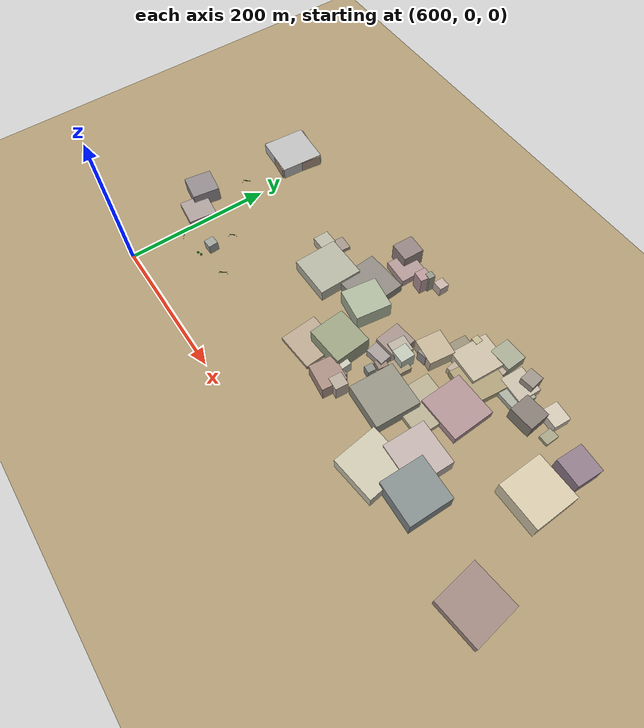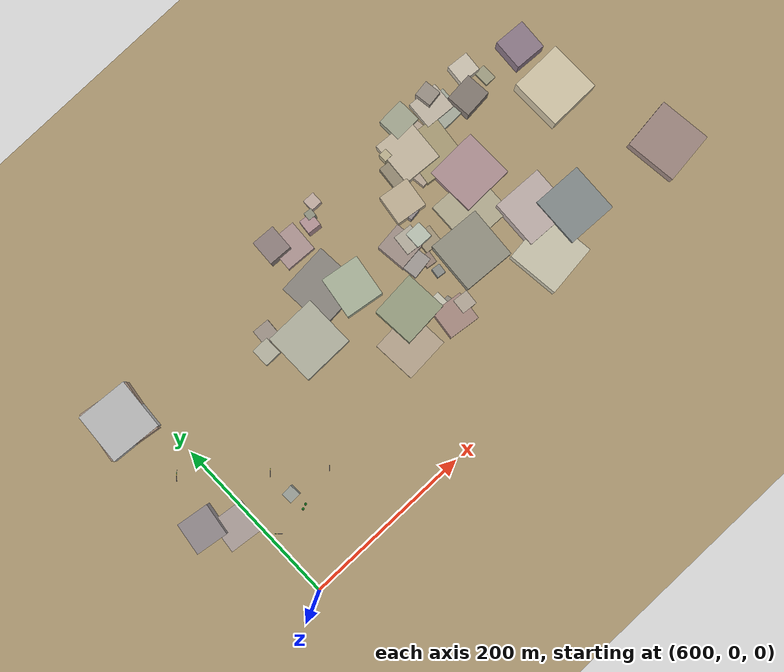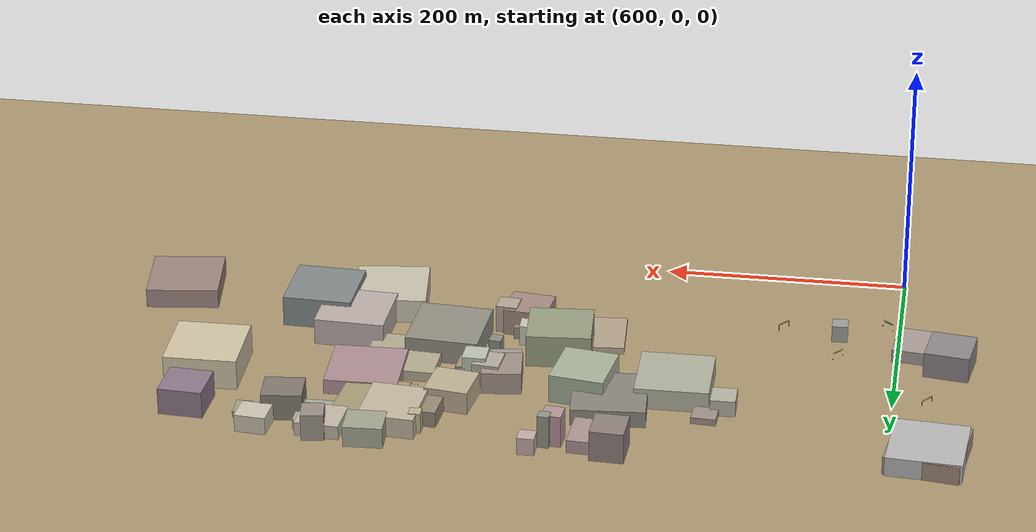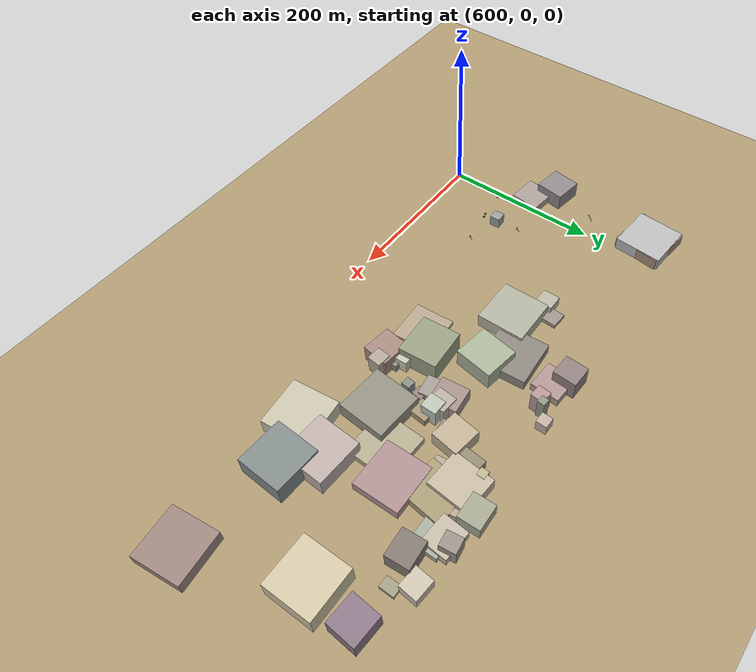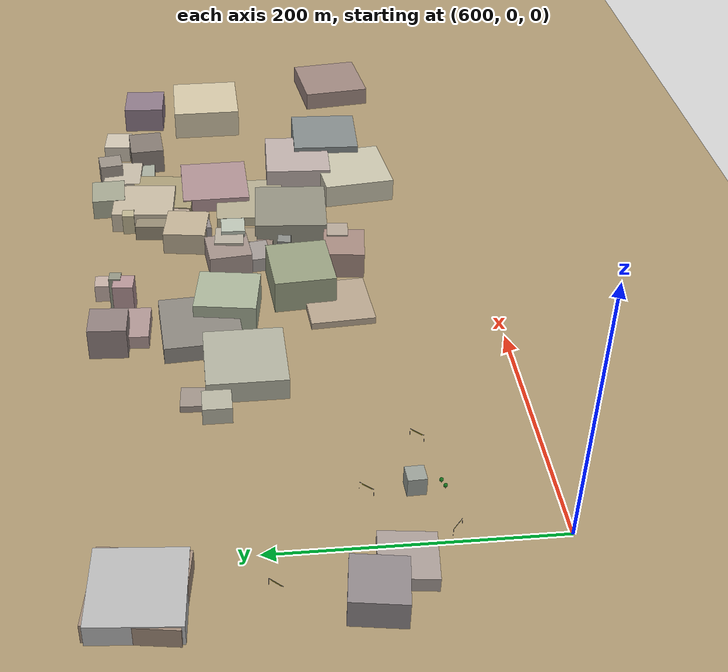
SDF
<sdf version="1.9">
 <world name="crossroad_world">
  <model name="ground_plane">
   <static>true</static>
   <pose>0 0 -0.05 0 0 0</pose>
   <link name="link">
    <collision name="collision">
     <geometry><plane><normal>0 0 1</normal><size>10000 10000</size></plane></geometry>
    </collision>
    <visual name="visual">
     <geometry><plane><normal>0 0 1</normal><size>15000 15000</size></plane></geometry>
     <material><ambient>0.68 0.60 0.45 1</ambient><diffuse>0.68 0.60 0.45 1</diffuse></material>
    </visual>
   </link>
  </model>
  <model name="gantry_13">
   <static>true</static>
   <pose>695.353 85.050 0 0 0 0.853</pose>
   <link name="link">
    <visual name="post_l">
     <pose>-5.700 0 2.925 0 0 0</pose>
     <geometry><cylinder><radius>0.1</radius><length>5.85</length></cylinder></geometry>
     <material><ambient>0.30 0.30 0.35 1</ambient><diffuse>0.30 0.30 0.35 1</diffuse></material>
    </visual>
    <visual name="post_r">
     <pose>5.700 0 2.925 0 0 0</pose>
     <geometry><cylinder><radius>0.1</radius><length>5.85</length></cylinder></geometry>
     <material><ambient>0.30 0.30 0.35 1</ambient><diffuse>0.30 0.30 0.35 1</diffuse></material>
    </visual>
    <visual name="beam">
     <pose>0 0 6.000 0 0 0</pose>
     <geometry><box><size>11.400 0.22 0.22</size></box></geometry>
     <material><ambient>0.30 0.30 0.35 1</ambient><diffuse>0.30 0.30 0.35 1</diffuse></material>
    </visual>
    <visual name="sign_border">
     <pose>0 -0.14 5.450 0 0 0</pose>
     <geometry><box><size>8.288 0.04 0.92</size></box></geometry>
     <material><ambient>0.90 0.85 0.10 1</ambient><diffuse>0.90 0.85 0.10 1</diffuse></material>
    </visual>
    <visual name="sign_panel">
     <pose>0 -0.15 5.450 0 0 0</pose>
     <geometry><box><size>8.208 0.05 0.86</size></box></geometry>
     <material><ambient>0.05 0.38 0.10 1</ambient><diffuse>0.05 0.38 0.10 1</diffuse></material>
    </visual>
    <collision name="col_post_l">
     <pose>-5.700 0 2.925 0 0 0</pose>
     <geometry><cylinder><radius>0.1</radius><length>5.85</length></cylinder></geometry>
    </collision>
    <collision name="col_post_r">
     <pose>5.700 0 2.925 0 0 0</pose>
     <geometry><cylinder><radius>0.1</radius><length>5.85</length></cylinder></geometry>
    </collision>
    <collision name="col_beam">
     <pose>0 0 6.000 0 0 0</pose>
     <geometry><box><size>11.400 0.22 0.22</size></box></geometry>
    </collision>
   </link>
  </model>
  <model name="gantry_42">
   <static>true</static>
   <pose>610.063 72.761 0 0 0 2.427</pose>
   <link name="link">
    <visual name="post_l">
     <pose>-5.700 0 2.925 0 0 0</pose>
     <geometry><cylinder><radius>0.1</radius><length>5.85</length></cylinder></geometry>
     <material><ambient>0.30 0.30 0.35 1</ambient><diffuse>0.30 0.30 0.35 1</diffuse></material>
    </visual>
    <visual name="post_r">
     <pose>5.700 0 2.925 0 0 0</pose>
     <geometry><cylinder><radius>0.1</radius><length>5.85</length></cylinder></geometry>
     <material><ambient>0.30 0.30 0.35 1</ambient><diffuse>0.30 0.30 0.35 1</diffuse></material>
    </visual>
    <visual name="beam">
     <pose>0 0 6.000 0 0 0</pose>
     <geometry><box><size>11.400 0.22 0.22</size></box></geometry>
     <material><ambient>0.30 0.30 0.35 1</ambient><diffuse>0.30 0.30 0.35 1</diffuse></material>
    </visual>
    <visual name="sign_border">
     <pose>0 -0.14 5.450 0 0 0</pose>
     <geometry><box><size>8.288 0.04 0.92</size></box></geometry>
     <material><ambient>0.90 0.85 0.10 1</ambient><diffuse>0.90 0.85 0.10 1</diffuse></material>
    </visual>
    <visual name="sign_panel">
     <pose>0 -0.15 5.450 0 0 0</pose>
     <geometry><box><size>8.208 0.05 0.86</size></box></geometry>
     <material><ambient>0.05 0.38 0.10 1</ambient><diffuse>0.05 0.38 0.10 1</diffuse></material>
    </visual>
    <collision name="col_post_l">
     <pose>-5.700 0 2.925 0 0 0</pose>
     <geometry><cylinder><radius>0.1</radius><length>5.85</length></cylinder></geometry>
    </collision>
    <collision name="col_post_r">
     <pose>5.700 0 2.925 0 0 0</pose>
     <geometry><cylinder><radius>0.1</radius><length>5.85</length></cylinder></geometry>
    </collision>
    <collision name="col_beam">
     <pose>0 0 6.000 0 0 0</pose>
     <geometry><box><size>11.400 0.22 0.22</size></box></geometry>
    </collision>
   </link>
  </model>
  <model name="gantry_139">
   <static>true</static>
   <pose>572.665 191.808 0 0 0 0.855</pose>
   <link name="link">
    <visual name="post_l">
     <pose>-5.700 0 2.925 0 0 0</pose>
     <geometry><cylinder><radius>0.1</radius><length>5.85</length></cylinder></geometry>
     <material><ambient>0.30 0.30 0.35 1</ambient><diffuse>0.30 0.30 0.35 1</diffuse></material>
    </visual>
    <visual name="post_r">
     <pose>5.700 0 2.925 0 0 0</pose>
     <geometry><cylinder><radius>0.1</radius><length>5.85</length></cylinder></geometry>
     <material><ambient>0.30 0.30 0.35 1</ambient><diffuse>0.30 0.30 0.35 1</diffuse></material>
    </visual>
    <visual name="beam">
     <pose>0 0 6.000 0 0 0</pose>
     <geometry><box><size>11.400 0.22 0.22</size></box></geometry>
     <material><ambient>0.30 0.30 0.35 1</ambient><diffuse>0.30 0.30 0.35 1</diffuse></material>
    </visual>
    <visual name="sign_border">
     <pose>0 -0.14 5.450 0 0 0</pose>
     <geometry><box><size>8.288 0.04 0.92</size></box></geometry>
     <material><ambient>0.90 0.85 0.10 1</ambient><diffuse>0.90 0.85 0.10 1</diffuse></material>
    </visual>
    <visual name="sign_panel">
     <pose>0 -0.15 5.450 0 0 0</pose>
     <geometry><box><size>8.208 0.05 0.86</size></box></geometry>
     <material><ambient>0.05 0.38 0.10 1</ambient><diffuse>0.05 0.38 0.10 1</diffuse></material>
    </visual>
    <collision name="col_post_l">
     <pose>-5.700 0 2.925 0 0 0</pose>
     <geometry><cylinder><radius>0.1</radius><length>5.85</length></cylinder></geometry>
    </collision>
    <collision name="col_post_r">
     <pose>5.700 0 2.925 0 0 0</pose>
     <geometry><cylinder><radius>0.1</radius><length>5.85</length></cylinder></geometry>
    </collision>
    <collision name="col_beam">
     <pose>0 0 6.000 0 0 0</pose>
     <geometry><box><size>11.400 0.22 0.22</size></box></geometry>
    </collision>
   </link>
  </model>
  <model name="gantry_140">
   <static>true</static>
   <pose>647.805 126.463 0 0 0 0.855</pose>
   <link name="link">
    <visual name="post_l">
     <pose>-5.700 0 2.925 0 0 0</pose>
     <geometry><cylinder><radius>0.1</radius><length>5.85</length></cylinder></geometry>
     <material><ambient>0.30 0.30 0.35 1</ambient><diffuse>0.30 0.30 0.35 1</diffuse></material>
    </visual>
    <visual name="post_r">
     <pose>5.700 0 2.925 0 0 0</pose>
     <geometry><cylinder><radius>0.1</radius><length>5.85</length></cylinder></geometry>
     <material><ambient>0.30 0.30 0.35 1</ambient><diffuse>0.30 0.30 0.35 1</diffuse></material>
    </visual>
    <visual name="beam">
     <pose>0 0 6.000 0 0 0</pose>
     <geometry><box><size>11.400 0.22 0.22</size></box></geometry>
     <material><ambient>0.30 0.30 0.35 1</ambient><diffuse>0.30 0.30 0.35 1</diffuse></material>
    </visual>
    <visual name="sign_border">
     <pose>0 -0.14 5.450 0 0 0</pose>
     <geometry><box><size>8.288 0.04 0.92</size></box></geometry>
     <material><ambient>0.90 0.85 0.10 1</ambient><diffuse>0.90 0.85 0.10 1</diffuse></material>
    </visual>
    <visual name="sign_panel">
     <pose>0 -0.15 5.450 0 0 0</pose>
     <geometry><box><size>8.208 0.05 0.86</size></box></geometry>
     <material><ambient>0.05 0.38 0.10 1</ambient><diffuse>0.05 0.38 0.10 1</diffuse></material>
    </visual>
    <collision name="col_post_l">
     <pose>-5.700 0 2.925 0 0 0</pose>
     <geometry><cylinder><radius>0.1</radius><length>5.85</length></cylinder></geometry>
    </collision>
    <collision name="col_post_r">
     <pose>5.700 0 2.925 0 0 0</pose>
     <geometry><cylinder><radius>0.1</radius><length>5.85</length></cylinder></geometry>
    </collision>
    <collision name="col_beam">
     <pose>0 0 6.000 0 0 0</pose>
     <geometry><box><size>11.400 0.22 0.22</size></box></geometry>
    </collision>
   </link>
  </model>
  <model name="tree_135">
   <static>true</static>
   <pose>646.273 74.105 0 0 0 0</pose>
   <link name="link">
    <visual name="trunk">
     <pose>0 0 1.225 0 0 0</pose>
     <geometry><cylinder><radius>0.107</radius><length>2.450</length></cylinder></geometry>
     <material><ambient>0.38 0.22 0.08 1</ambient><diffuse>0.38 0.22 0.08 1</diffuse></material>
    </visual>
    <visual name="canopy">
     <pose>0 0 3.395 0 0 0</pose>
     <geometry><sphere><radius>1.455</radius></sphere></geometry>
     <material><ambient>0.08 0.44 0.10 1</ambient><diffuse>0.08 0.44 0.10 1</diffuse></material>
    </visual>
    <collision name="col">
     <pose>0 0 1.225 0 0 0</pose>
     <geometry><cylinder><radius>0.107</radius><length>2.450</length></cylinder></geometry>
    </collision>
   </link>
  </model>
  <model name="tree_136">
   <static>true</static>
   <pose>651.659 75.872 0 0 0 0</pose>
   <link name="link">
    <visual name="trunk">
     <pose>0 0 1.240 0 0 0</pose>
     <geometry><cylinder><radius>0.109</radius><length>2.480</length></cylinder></geometry>
     <material><ambient>0.38 0.22 0.08 1</ambient><diffuse>0.38 0.22 0.08 1</diffuse></material>
    </visual>
    <visual name="canopy">
     <pose>0 0 3.437 0 0 0</pose>
     <geometry><sphere><radius>1.473</radius></sphere></geometry>
     <material><ambient>0.08 0.44 0.10 1</ambient><diffuse>0.08 0.44 0.10 1</diffuse></material>
    </visual>
    <collision name="col">
     <pose>0 0 1.240 0 0 0</pose>
     <geometry><cylinder><radius>0.109</radius><length>2.480</length></cylinder></geometry>
    </collision>
   </link>
  </model>
  <model name="building_2">
   <static>true</static>
   <pose>1046.770 304.616 11.179 0 0 0.145</pose>
   <link name="link">
    <visual name="body">
     <geometry><box><size>18.29 19.47 22.36</size></box></geometry>
     <material><ambient>0.61 0.57 0.53 1</ambient><diffuse>0.61 0.57 0.53 1</diffuse></material>
    </visual>
    <collision name="col"><geometry><box><size>18.29 19.47 22.36</size></box></geometry></collision>
   </link>
  </model>
  <model name="building_3">
   <static>true</static>
   <pose>1042.438 293.893 5.868 0 0 -0.064</pose>
   <link name="link">
    <visual name="body">
     <geometry><box><size>35.77 31.93 11.74</size></box></geometry>
     <material><ambient>0.77 0.73 0.66 1</ambient><diffuse>0.77 0.73 0.66 1</diffuse></material>
    </visual>
    <collision name="col"><geometry><box><size>35.77 31.93 11.74</size></box></geometry></collision>
   </link>
  </model>
  <model name="building_4">
   <static>true</static>
   <pose>1076.986 273.290 11.185 0 0 0.087</pose>
   <link name="link">
    <visual name="body">
     <geometry><box><size>32.80 28.88 22.37</size></box></geometry>
     <material><ambient>0.52 0.48 0.45 1</ambient><diffuse>0.52 0.48 0.45 1</diffuse></material>
    </visual>
    <collision name="col"><geometry><box><size>32.80 28.88 22.37</size></box></geometry></collision>
   </link>
  </model>
  <model name="building_5">
   <static>true</static>
   <pose>1095.404 299.416 7.452 0 0 -0.082</pose>
   <link name="link">
    <visual name="body">
     <geometry><box><size>25.28 22.77 14.90</size></box></geometry>
     <material><ambient>0.81 0.77 0.70 1</ambient><diffuse>0.81 0.77 0.70 1</diffuse></material>
    </visual>
    <collision name="col"><geometry><box><size>25.28 22.77 14.90</size></box></geometry></collision>
   </link>
  </model>
  <model name="building_6">
   <static>true</static>
   <pose>1109.107 279.119 2.515 0 0 0.010</pose>
   <link name="link">
    <visual name="body">
     <geometry><box><size>13.12 18.06 5.03</size></box></geometry>
     <material><ambient>0.64 0.63 0.52 1</ambient><diffuse>0.64 0.63 0.52 1</diffuse></material>
    </visual>
    <collision name="col"><geometry><box><size>13.12 18.06 5.03</size></box></geometry></collision>
   </link>
  </model>
  <model name="building_12">
   <static>true</static>
   <pose>1155.603 275.176 11.331 0 0 -0.054</pose>
   <link name="link">
    <visual name="body">
     <geometry><box><size>36.09 35.56 22.66</size></box></geometry>
     <material><ambient>0.56 0.48 0.54 1</ambient><diffuse>0.56 0.48 0.54 1</diffuse></material>
    </visual>
    <collision name="col"><geometry><box><size>36.09 35.56 22.66</size></box></geometry></collision>
   </link>
  </model>
  <model name="building_13">
   <static>true</static>
   <pose>1151.616 216.913 12.793 0 0 0.014</pose>
   <link name="link">
    <visual name="body">
     <geometry><box><size>60.00 60.00 25.59</size></box></geometry>
     <material><ambient>0.83 0.78 0.66 1</ambient><diffuse>0.83 0.78 0.66 1</diffuse></material>
    </visual>
    <collision name="col"><geometry><box><size>60.00 60.00 25.59</size></box></geometry></collision>
   </link>
  </model>
  <model name="building_14">
   <static>true</static>
   <pose>1200.093 90.853 8.045 0 0 0.121</pose>
   <link name="link">
    <visual name="body">
     <geometry><box><size>60.00 60.00 16.09</size></box></geometry>
     <material><ambient>0.62 0.53 0.50 1</ambient><diffuse>0.62 0.53 0.50 1</diffuse></material>
    </visual>
    <collision name="col"><geometry><box><size>60.00 60.00 16.09</size></box></geometry></collision>
   </link>
  </model>
  <model name="building_17">
   <static>true</static>
   <pose>1049.561 282.876 4.110 0 0 0.011</pose>
   <link name="link">
    <visual name="body">
     <geometry><box><size>30.36 33.47 8.22</size></box></geometry>
     <material><ambient>0.66 0.68 0.62 1</ambient><diffuse>0.66 0.68 0.62 1</diffuse></material>
    </visual>
    <collision name="col"><geometry><box><size>30.36 33.47 8.22</size></box></geometry></collision>
   </link>
  </model>
  <model name="building_18">
   <static>true</static>
   <pose>977.458 280.156 3.846 0 0 -0.051</pose>
   <link name="link">
    <visual name="body">
     <geometry><box><size>17.23 16.04 7.69</size></box></geometry>
     <material><ambient>0.58 0.54 0.58 1</ambient><diffuse>0.58 0.54 0.58 1</diffuse></material>
    </visual>
    <collision name="col"><geometry><box><size>17.23 16.04 7.69</size></box></geometry></collision>
   </link>
  </model>
  <model name="building_19">
   <static>true</static>
   <pose>968.442 287.770 8.858 0 0 -0.008</pose>
   <link name="link">
    <visual name="body">
     <geometry><box><size>9.87 9.82 17.72</size></box></geometry>
     <material><ambient>0.75 0.71 0.57 1</ambient><diffuse>0.75 0.71 0.57 1</diffuse></material>
    </visual>
    <collision name="col"><geometry><box><size>9.87 9.82 17.72</size></box></geometry></collision>
   </link>
  </model>
  <model name="building_20">
   <static>true</static>
   <pose>961.353 267.533 6.657 0 0 -0.088</pose>
   <link name="link">
    <visual name="body">
     <geometry><box><size>17.80 27.37 13.31</size></box></geometry>
     <material><ambient>0.59 0.55 0.46 1</ambient><diffuse>0.59 0.55 0.46 1</diffuse></material>
    </visual>
    <collision name="col"><geometry><box><size>17.80 27.37 13.31</size></box></geometry></collision>
   </link>
  </model>
  <model name="building_21">
   <static>true</static>
   <pose>988.735 274.597 8.602 0 0 -0.070</pose>
   <link name="link">
    <visual name="body">
     <geometry><box><size>45.66 51.50 17.20</size></box></geometry>
     <material><ambient>0.78 0.73 0.64 1</ambient><diffuse>0.78 0.73 0.64 1</diffuse></material>
    </visual>
    <collision name="col"><geometry><box><size>45.66 51.50 17.20</size></box></geometry></collision>
   </link>
  </model>
  <model name="building_22">
   <static>true</static>
   <pose>1009.094 258.563 5.829 0 0 -0.112</pose>
   <link name="link">
    <visual name="body">
     <geometry><box><size>50.58 53.32 11.66</size></box></geometry>
     <material><ambient>0.67 0.62 0.47 1</ambient><diffuse>0.67 0.62 0.47 1</diffuse></material>
    </visual>
    <collision name="col"><geometry><box><size>50.58 53.32 11.66</size></box></geometry></collision>
   </link>
  </model>
  <model name="building_23">
   <static>true</static>
   <pose>997.686 267.028 5.470 0 0 0.128</pose>
   <link name="link">
    <visual name="body">
     <geometry><box><size>51.72 56.64 10.94</size></box></geometry>
     <material><ambient>0.73 0.66 0.59 1</ambient><diffuse>0.73 0.66 0.59 1</diffuse></material>
    </visual>
    <collision name="col"><geometry><box><size>51.72 56.64 10.94</size></box></geometry></collision>
   </link>
  </model>
  <model name="building_24">
   <static>true</static>
   <pose>1022.057 213.204 6.309 0 0 0.024</pose>
   <link name="link">
    <visual name="body">
     <geometry><box><size>60.00 57.34 12.62</size></box></geometry>
     <material><ambient>0.69 0.57 0.58 1</ambient><diffuse>0.69 0.57 0.58 1</diffuse></material>
    </visual>
    <collision name="col"><geometry><box><size>60.00 57.34 12.62</size></box></geometry></collision>
   </link>
  </model>
  <model name="building_25">
   <static>true</static>
   <pose>996.449 183.402 4.271 0 0 -0.028</pose>
   <link name="link">
    <visual name="body">
     <geometry><box><size>60.00 57.63 8.54</size></box></geometry>
     <material><ambient>0.71 0.68 0.57 1</ambient><diffuse>0.71 0.68 0.57 1</diffuse></material>
    </visual>
    <collision name="col"><geometry><box><size>60.00 57.63 8.54</size></box></geometry></collision>
   </link>
  </model>
  <model name="building_26">
   <static>true</static>
   <pose>946.105 226.203 9.075 0 0 0.125</pose>
   <link name="link">
    <visual name="body">
     <geometry><box><size>13.34 14.67 18.15</size></box></geometry>
     <material><ambient>0.58 0.55 0.55 1</ambient><diffuse>0.58 0.55 0.55 1</diffuse></material>
    </visual>
    <collision name="col"><geometry><box><size>13.34 14.67 18.15</size></box></geometry></collision>
   </link>
  </model>
  <model name="building_27">
   <static>true</static>
   <pose>947.656 239.050 9.535 0 0 -0.137</pose>
   <link name="link">
    <visual name="body">
     <geometry><box><size>35.65 34.84 19.07</size></box></geometry>
     <material><ambient>0.76 0.70 0.59 1</ambient><diffuse>0.76 0.70 0.59 1</diffuse></material>
    </visual>
    <collision name="col"><geometry><box><size>35.65 34.84 19.07</size></box></geometry></collision>
   </link>
  </model>
  <model name="building_28">
   <static>true</static>
   <pose>925.119 175.211 4.842 0 0 -0.135</pose>
   <link name="link">
    <visual name="body">
     <geometry><box><size>12.39 13.55 9.68</size></box></geometry>
     <material><ambient>0.60 0.52 0.47 1</ambient><diffuse>0.60 0.52 0.47 1</diffuse></material>
    </visual>
    <collision name="col"><geometry><box><size>12.39 13.55 9.68</size></box></geometry></collision>
   </link>
  </model>
  <model name="building_29">
   <static>true</static>
   <pose>934.563 200.542 11.829 0 0 -0.018</pose>
   <link name="link">
    <visual name="body">
     <geometry><box><size>19.24 19.42 23.66</size></box></geometry>
     <material><ambient>0.74 0.77 0.71 1</ambient><diffuse>0.74 0.77 0.71 1</diffuse></material>
    </visual>
    <collision name="col"><geometry><box><size>19.24 19.42 23.66</size></box></geometry></collision>
   </link>
  </model>
  <model name="building_30">
   <static>true</static>
   <pose>940.243 191.395 4.841 0 0 -0.088</pose>
   <link name="link">
    <visual name="body">
     <geometry><box><size>20.50 21.72 9.68</size></box></geometry>
     <material><ambient>0.65 0.59 0.48 1</ambient><diffuse>0.65 0.59 0.48 1</diffuse></material>
    </visual>
    <collision name="col"><geometry><box><size>20.50 21.72 9.68</size></box></geometry></collision>
   </link>
  </model>
  <model name="building_31">
   <static>true</static>
   <pose>912.466 184.757 6.099 0 0 0.147</pose>
   <link name="link">
    <visual name="body">
     <geometry><box><size>25.71 25.93 12.20</size></box></geometry>
     <material><ambient>0.64 0.61 0.59 1</ambient><diffuse>0.64 0.61 0.59 1</diffuse></material>
    </visual>
    <collision name="col"><geometry><box><size>25.71 25.93 12.20</size></box></geometry></collision>
   </link>
  </model>
  <model name="building_32">
   <static>true</static>
   <pose>912.441 205.628 9.154 0 0 0.111</pose>
   <link name="link">
    <visual name="body">
     <geometry><box><size>32.26 34.60 18.31</size></box></geometry>
     <material><ambient>0.64 0.57 0.54 1</ambient><diffuse>0.64 0.57 0.54 1</diffuse></material>
    </visual>
    <collision name="col"><geometry><box><size>32.26 34.60 18.31</size></box></geometry></collision>
   </link>
  </model>
  <model name="building_33">
   <static>true</static>
   <pose>923.880 203.989 10.297 0 0 -0.092</pose>
   <link name="link">
    <visual name="body">
     <geometry><box><size>22.07 23.49 20.59</size></box></geometry>
     <material><ambient>0.72 0.69 0.63 1</ambient><diffuse>0.72 0.69 0.63 1</diffuse></material>
    </visual>
    <collision name="col"><geometry><box><size>22.07 23.49 20.59</size></box></geometry></collision>
   </link>
  </model>
  <model name="building_35">
   <static>true</static>
   <pose>1044.625 137.653 11.247 0 0 -0.040</pose>
   <link name="link">
    <visual name="body">
     <geometry><box><size>57.92 55.86 22.49</size></box></geometry>
     <material><ambient>0.75 0.69 0.67 1</ambient><diffuse>0.75 0.69 0.67 1</diffuse></material>
    </visual>
    <collision name="col"><geometry><box><size>57.92 55.86 22.49</size></box></geometry></collision>
   </link>
  </model>
  <model name="building_36">
   <static>true</static>
   <pose>1076.822 109.817 13.036 0 0 -0.036</pose>
   <link name="link">
    <visual name="body">
     <geometry><box><size>57.36 57.33 26.07</size></box></geometry>
     <material><ambient>0.52 0.55 0.55 1</ambient><diffuse>0.52 0.55 0.55 1</diffuse></material>
    </visual>
    <collision name="col"><geometry><box><size>57.36 57.33 26.07</size></box></geometry></collision>
   </link>
  </model>
  <model name="building_37">
   <static>true</static>
   <pose>898.879 134.188 8.642 0 0 0.035</pose>
   <link name="link">
    <visual name="body">
     <geometry><box><size>18.44 16.84 17.28</size></box></geometry>
     <material><ambient>0.79 0.78 0.71 1</ambient><diffuse>0.79 0.78 0.71 1</diffuse></material>
    </visual>
    <collision name="col"><geometry><box><size>18.44 16.84 17.28</size></box></geometry></collision>
   </link>
  </model>
  <model name="building_38">
   <static>true</static>
   <pose>904.797 123.357 5.258 0 0 0.052</pose>
   <link name="link">
    <visual name="body">
     <geometry><box><size>19.44 18.61 10.52</size></box></geometry>
     <material><ambient>0.57 0.55 0.50 1</ambient><diffuse>0.57 0.55 0.50 1</diffuse></material>
    </visual>
    <collision name="col"><geometry><box><size>19.44 18.61 10.52</size></box></geometry></collision>
   </link>
  </model>
  <model name="building_39">
   <static>true</static>
   <pose>921.102 115.184 11.820 0 0 -0.087</pose>
   <link name="link">
    <visual name="body">
     <geometry><box><size>17.78 17.06 23.64</size></box></geometry>
     <material><ambient>0.71 0.66 0.60 1</ambient><diffuse>0.71 0.66 0.60 1</diffuse></material>
    </visual>
    <collision name="col"><geometry><box><size>17.78 17.06 23.64</size></box></geometry></collision>
   </link>
  </model>
  <model name="building_40">
   <static>true</static>
   <pose>904.198 111.710 11.227 0 0 -0.119</pose>
   <link name="link">
    <visual name="body">
     <geometry><box><size>36.12 33.28 22.45</size></box></geometry>
     <material><ambient>0.66 0.55 0.51 1</ambient><diffuse>0.66 0.55 0.51 1</diffuse></material>
    </visual>
    <collision name="col"><geometry><box><size>36.12 33.28 22.45</size></box></geometry></collision>
   </link>
  </model>
  <model name="building_41">
   <static>true</static>
   <pose>848.790 122.615 2.812 0 0 0.068</pose>
   <link name="link">
    <visual name="body">
     <geometry><box><size>52.17 50.29 5.62</size></box></geometry>
     <material><ambient>0.72 0.65 0.56 1</ambient><diffuse>0.72 0.65 0.56 1</diffuse></material>
    </visual>
    <collision name="col"><geometry><box><size>52.17 50.29 5.62</size></box></geometry></collision>
   </link>
  </model>
  <model name="building_42">
   <static>true</static>
   <pose>745.302 236.809 2.779 0 0 -0.057</pose>
   <link name="link">
    <visual name="body">
     <geometry><box><size>20.13 21.16 5.56</size></box></geometry>
     <material><ambient>0.63 0.58 0.54 1</ambient><diffuse>0.63 0.58 0.54 1</diffuse></material>
    </visual>
    <collision name="col"><geometry><box><size>20.13 21.16 5.56</size></box></geometry></collision>
   </link>
  </model>
  <model name="building_43">
   <static>true</static>
   <pose>732.067 221.653 6.865 0 0 0.005</pose>
   <link name="link">
    <visual name="body">
     <geometry><box><size>20.23 21.33 13.73</size></box></geometry>
     <material><ambient>0.72 0.71 0.64 1</ambient><diffuse>0.72 0.71 0.64 1</diffuse></material>
    </visual>
    <collision name="col"><geometry><box><size>20.23 21.33 13.73</size></box></geometry></collision>
   </link>
  </model>
  <model name="building_44">
   <static>true</static>
   <pose>822.081 230.724 6.970 0 0 0.071</pose>
   <link name="link">
    <visual name="body">
     <geometry><box><size>60.00 60.00 13.94</size></box></geometry>
     <material><ambient>0.55 0.53 0.50 1</ambient><diffuse>0.55 0.53 0.50 1</diffuse></material>
    </visual>
    <collision name="col"><geometry><box><size>60.00 60.00 13.94</size></box></geometry></collision>
   </link>
  </model>
  <model name="building_45">
   <static>true</static>
   <pose>877.440 305.506 7.312 0 0 -0.022</pose>
   <link name="link">
    <visual name="body">
     <geometry><box><size>13.82 13.53 14.62</size></box></geometry>
     <material><ambient>0.77 0.69 0.65 1</ambient><diffuse>0.77 0.69 0.65 1</diffuse></material>
    </visual>
    <collision name="col"><geometry><box><size>13.82 13.53 14.62</size></box></geometry></collision>
   </link>
  </model>
  <model name="building_46">
   <static>true</static>
   <pose>865.333 295.233 13.949 0 0 -0.092</pose>
   <link name="link">
    <visual name="body">
     <geometry><box><size>9.41 9.11 27.90</size></box></geometry>
     <material><ambient>0.58 0.59 0.52 1</ambient><diffuse>0.58 0.59 0.52 1</diffuse></material>
    </visual>
    <collision name="col"><geometry><box><size>9.41 9.11 27.90</size></box></geometry></collision>
   </link>
  </model>
  <model name="building_47">
   <static>true</static>
   <pose>859.141 288.629 13.553 0 0 -0.090</pose>
   <link name="link">
    <visual name="body">
     <geometry><box><size>15.88 15.99 27.11</size></box></geometry>
     <material><ambient>0.72 0.59 0.60 1</ambient><diffuse>0.72 0.59 0.60 1</diffuse></material>
    </visual>
    <collision name="col"><geometry><box><size>15.88 15.99 27.11</size></box></geometry></collision>
   </link>
  </model>
  <model name="building_56">
   <static>true</static>
   <pose>827.949 287.027 5.562 0 0 -0.053</pose>
   <link name="link">
    <visual name="body">
     <geometry><box><size>35.65 36.11 11.12</size></box></geometry>
     <material><ambient>0.69 0.59 0.58 1</ambient><diffuse>0.69 0.59 0.58 1</diffuse></material>
    </visual>
    <collision name="col"><geometry><box><size>35.65 36.11 11.12</size></box></geometry></collision>
   </link>
  </model>
  <model name="building_59">
   <static>true</static>
   <pose>773.545 199.315 8.913 0 0 0.009</pose>
   <link name="link">
    <visual name="body">
     <geometry><box><size>60.00 60.00 17.83</size></box></geometry>
     <material><ambient>0.70 0.70 0.63 1</ambient><diffuse>0.70 0.70 0.63 1</diffuse></material>
    </visual>
    <collision name="col"><geometry><box><size>60.00 60.00 17.83</size></box></geometry></collision>
   </link>
  </model>
  <model name="building_60">
   <static>true</static>
   <pose>813.572 299.325 13.012 0 0 -0.046</pose>
   <link name="link">
    <visual name="body">
     <geometry><box><size>27.33 29.17 26.02</size></box></geometry>
     <material><ambient>0.57 0.51 0.50 1</ambient><diffuse>0.57 0.51 0.50 1</diffuse></material>
    </visual>
    <collision name="col"><geometry><box><size>27.33 29.17 26.02</size></box></geometry></collision>
   </link>
  </model>
  <model name="building_71">
   <static>true</static>
   <pose>1005.228 305.421 8.716 0 0 0.041</pose>
   <link name="link">
    <visual name="body">
     <geometry><box><size>31.57 27.57 17.43</size></box></geometry>
     <material><ambient>0.65 0.66 0.57 1</ambient><diffuse>0.65 0.66 0.57 1</diffuse></material>
    </visual>
    <collision name="col"><geometry><box><size>31.57 27.57 17.43</size></box></geometry></collision>
   </link>
  </model>
  <model name="building_76">
   <static>true</static>
   <pose>924.603 158.766 7.198 0 0 -0.110</pose>
   <link name="link">
    <visual name="body">
     <geometry><box><size>10.12 10.93 14.40</size></box></geometry>
     <material><ambient>0.55 0.56 0.54 1</ambient><diffuse>0.55 0.56 0.54 1</diffuse></material>
    </visual>
    <collision name="col"><geometry><box><size>10.12 10.93 14.40</size></box></geometry></collision>
   </link>
  </model>
  <model name="building_116">
   <static>true</static>
   <pose>557.098 131.350 10.878 0 0 -0.144</pose>
   <link name="link">
    <visual name="body">
     <geometry><box><size>37.05 37.40 21.76</size></box></geometry>
     <material><ambient>0.57 0.54 0.55 1</ambient><diffuse>0.57 0.54 0.55 1</diffuse></material>
    </visual>
    <collision name="col"><geometry><box><size>37.05 37.40 21.76</size></box></geometry></collision>
   </link>
  </model>
  <model name="building_349">
   <static>true</static>
   <pose>568.526 274.830 8.156 0 0 -0.070</pose>
   <link name="link">
    <visual name="body">
     <geometry><box><size>60.00 60.00 16.31</size></box></geometry>
     <material><ambient>0.73 0.73 0.73 1</ambient><diffuse>0.73 0.73 0.73 1</diffuse></material>
    </visual>
    <collision name="col"><geometry><box><size>60.00 60.00 16.31</size></box></geometry></collision>
   </link>
  </model>
  <model name="building_350">
   <static>true</static>
   <pose>568.526 274.830 7.665 0 0 -0.139</pose>
   <link name="link">
    <visual name="body">
     <geometry><box><size>60.00 60.00 15.33</size></box></geometry>
     <material><ambient>0.65 0.56 0.49 1</ambient><diffuse>0.65 0.56 0.49 1</diffuse></material>
    </visual>
    <collision name="col"><geometry><box><size>60.00 60.00 15.33</size></box></geometry></collision>
   </link>
  </model>
  <model name="building_352">
   <static>true</static>
   <pose>648.656 94.177 7.170 0 0 0.039</pose>
   <link name="link">
    <visual name="body">
     <geometry><box><size>13.10 13.33 14.34</size></box></geometry>
     <material><ambient>0.61 0.63 0.60 1</ambient><diffuse>0.61 0.63 0.60 1</diffuse></material>
    </visual>
    <collision name="col"><geometry><box><size>13.10 13.33 14.34</size></box></geometry></collision>
   </link>
  </model>
  <model name="building_646">
   <static>true</static>
   <pose>873.069 149.933 13.709 0 0 0.073</pose>
   <link name="link">
    <visual name="body">
     <geometry><box><size>52.83 48.61 27.42</size></box></geometry>
     <material><ambient>0.60 0.63 0.51 1</ambient><diffuse>0.60 0.63 0.51 1</diffuse></material>
    </visual>
    <collision name="col"><geometry><box><size>52.83 48.61 27.42</size></box></geometry></collision>
   </link>
  </model>
  <model name="building_651">
   <static>true</static>
   <pose>845.527 208.917 12.091 0 0 -0.148</pose>
   <link name="link">
    <visual name="body">
     <geometry><box><size>44.64 48.17 24.18</size></box></geometry>
     <material><ambient>0.67 0.71 0.61 1</ambient><diffuse>0.67 0.71 0.61 1</diffuse></material>
    </visual>
    <collision name="col"><geometry><box><size>44.64 48.17 24.18</size></box></geometry></collision>
   </link>
  </model>
  <model name="building_660">
   <static>true</static>
   <pose>964.751 150.417 10.022 0 0 -0.062</pose>
   <link name="link">
    <visual name="body">
     <geometry><box><size>60.00 60.00 20.04</size></box></geometry>
     <material><ambient>0.58 0.57 0.51 1</ambient><diffuse>0.58 0.57 0.51 1</diffuse></material>
    </visual>
    <collision name="col"><geometry><box><size>60.00 60.00 20.04</size></box></geometry></collision>
   </link>
  </model>
  <model name="building_661">
   <static>true</static>
   <pose>1023.611 90.322 10.095 0 0 0.116</pose>
   <link name="link">
    <visual name="body">
     <geometry><box><size>60.00 60.00 20.19</size></box></geometry>
     <material><ambient>0.79 0.77 0.68 1</ambient><diffuse>0.79 0.77 0.68 1</diffuse></material>
    </visual>
    <collision name="col"><geometry><box><size>60.00 60.00 20.19</size></box></geometry></collision>
   </link>
  </model>
  <model name="building_671">
   <static>true</static>
   <pose>583.427 109.403 5.396 0 0 -0.112</pose>
   <link name="link">
    <visual name="body">
     <geometry><box><size>38.35 38.22 10.79</size></box></geometry>
     <material><ambient>0.67 0.62 0.60 1</ambient><diffuse>0.67 0.62 0.60 1</diffuse></material>
    </visual>
    <collision name="col"><geometry><box><size>38.35 38.22 10.79</size></box></geometry></collision>
   </link>
  </model>
 </world>
</sdf>
